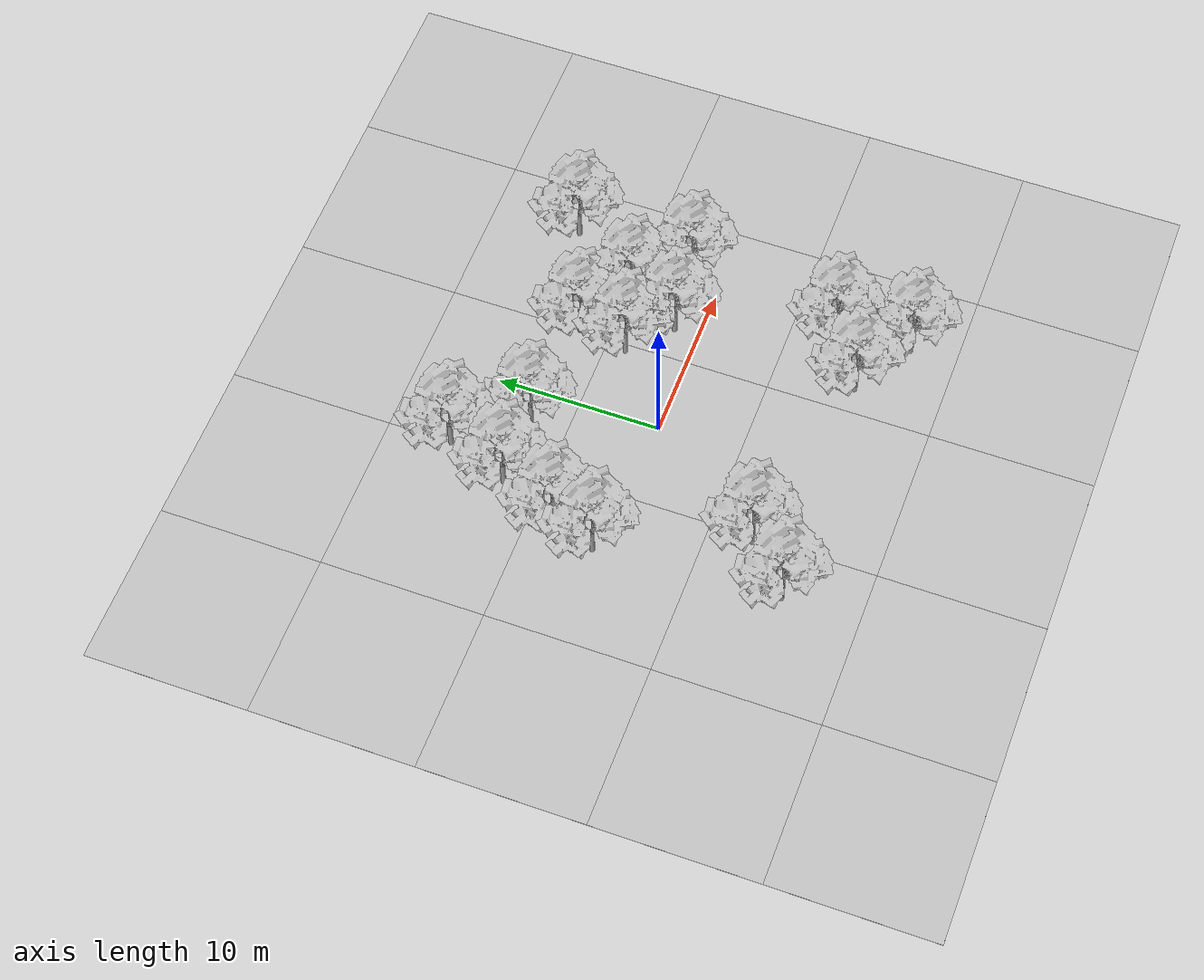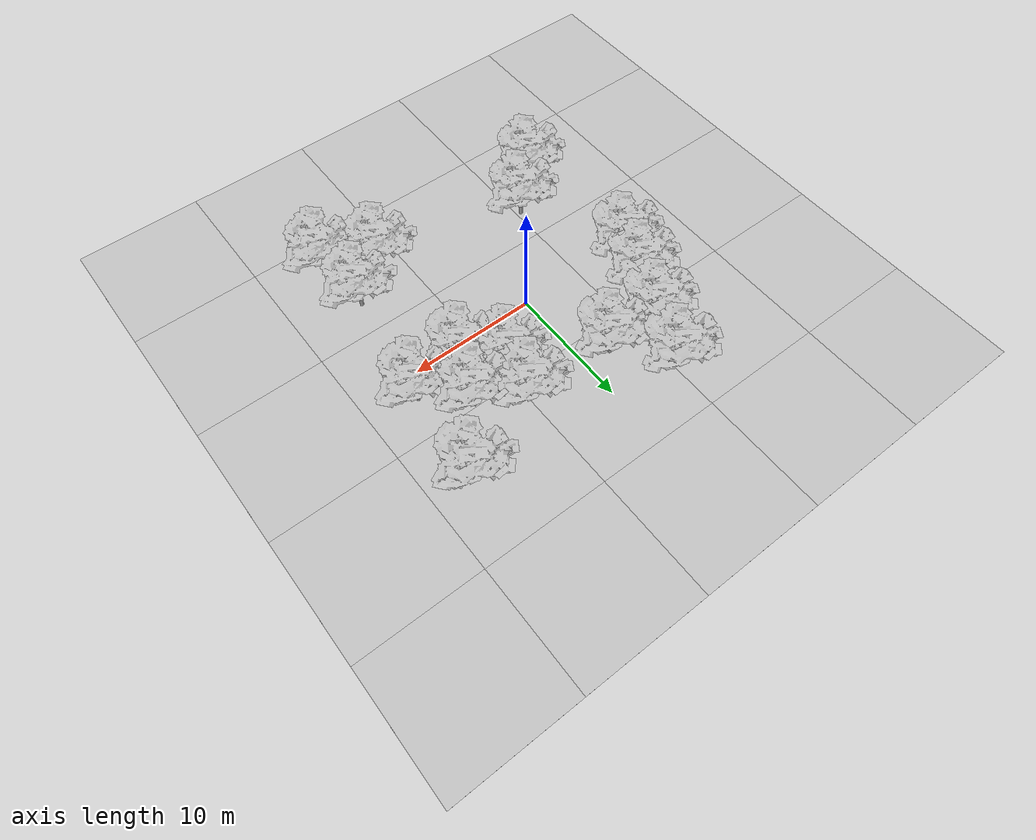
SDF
<sdf version="1.7">
 <world name="world_template_empty">
  <gravity>0 0 -9.8</gravity>
  <scene><ambient>0.4 0.4 0.4 1</ambient><background>0.7 0.7 0.7 1</background><shadows>1</shadows></scene>
  <light name="sun" type="directional">
   <pose>0 0 20 0 -0 0</pose>
   <diffuse>0.8 0.8 0.8 1</diffuse>
   <specular>0.2 0.2 0.2 1</specular>
   <attenuation>
    <range>1000</range>
    <constant>0.9</constant>
    <linear>0.01</linear>
    <quadratic>0.001</quadratic>
   </attenuation>
   <direction>-0.5 0.1 -0.9</direction>
   <spot><inner_angle>0</inner_angle><outer_angle>0</outer_angle><falloff>0</falloff></spot>
  </light>
  <model name="green_ground">
   <static>1</static>
   <link name="link">
    <collision name="collision">
     <geometry><plane><normal>0 0 1</normal><size>200 200</size></plane></geometry>
    </collision>
    <visual name="visual_m20_m20">
     <pose>-20 -20 0 0 -0 0</pose>
     <geometry>
      <mesh><uri>model://world_jean_ground/meshes/world_jean_ground.obj</uri><scale>1 1 1</scale></mesh>
     </geometry>
    </visual>
    <visual name="visual_m20_m10">
     <pose>-20 -10 0 0 -0 0</pose>
     <geometry>
      <mesh><uri>model://world_jean_ground/meshes/world_jean_ground.obj</uri><scale>1 1 1</scale></mesh>
     </geometry>
    </visual>
    <visual name="visual_m20_0">
     <pose>-20 0 0 0 -0 0</pose>
     <geometry>
      <mesh><uri>model://world_jean_ground/meshes/world_jean_ground.obj</uri><scale>1 1 1</scale></mesh>
     </geometry>
    </visual>
    <visual name="visual_m20_10">
     <pose>-20 10 0 0 -0 0</pose>
     <geometry>
      <mesh><uri>model://world_jean_ground/meshes/world_jean_ground.obj</uri><scale>1 1 1</scale></mesh>
     </geometry>
    </visual>
    <visual name="visual_m20_20">
     <pose>-20 20 0 0 -0 0</pose>
     <geometry>
      <mesh><uri>model://world_jean_ground/meshes/world_jean_ground.obj</uri><scale>1 1 1</scale></mesh>
     </geometry>
    </visual>
    <visual name="visual_m10_m20">
     <pose>-10 -20 0 0 -0 0</pose>
     <geometry>
      <mesh><uri>model://world_jean_ground/meshes/world_jean_ground.obj</uri><scale>1 1 1</scale></mesh>
     </geometry>
    </visual>
    <visual name="visual_m10_m10">
     <pose>-10 -10 0 0 -0 0</pose>
     <geometry>
      <mesh><uri>model://world_jean_ground/meshes/world_jean_ground.obj</uri><scale>1 1 1</scale></mesh>
     </geometry>
    </visual>
    <visual name="visual_m10_0">
     <pose>-10 0 0 0 -0 0</pose>
     <geometry>
      <mesh><uri>model://world_jean_ground/meshes/world_jean_ground.obj</uri><scale>1 1 1</scale></mesh>
     </geometry>
    </visual>
    <visual name="visual_m10_10">
     <pose>-10 10 0 0 -0 0</pose>
     <geometry>
      <mesh><uri>model://world_jean_ground/meshes/world_jean_ground.obj</uri><scale>1 1 1</scale></mesh>
     </geometry>
    </visual>
    <visual name="visual_m10_20">
     <pose>-10 20 0 0 -0 0</pose>
     <geometry>
      <mesh><uri>model://world_jean_ground/meshes/world_jean_ground.obj</uri><scale>1 1 1</scale></mesh>
     </geometry>
    </visual>
    <visual name="visual_0_m20">
     <pose>0 -20 0 0 -0 0</pose>
     <geometry>
      <mesh><uri>model://world_jean_ground/meshes/world_jean_ground.obj</uri><scale>1 1 1</scale></mesh>
     </geometry>
    </visual>
    <visual name="visual_0_m10">
     <pose>0 -10 0 0 -0 0</pose>
     <geometry>
      <mesh><uri>model://world_jean_ground/meshes/world_jean_ground.obj</uri><scale>1 1 1</scale></mesh>
     </geometry>
    </visual>
    <visual name="visual_0_0">
     <geometry>
      <mesh><uri>model://world_jean_ground/meshes/world_jean_ground.obj</uri><scale>1 1 1</scale></mesh>
     </geometry>
    </visual>
    <visual name="visual_0_10">
     <pose>0 10 0 0 -0 0</pose>
     <geometry>
      <mesh><uri>model://world_jean_ground/meshes/world_jean_ground.obj</uri><scale>1 1 1</scale></mesh>
     </geometry>
    </visual>
    <visual name="visual_0_20">
     <pose>0 20 0 0 -0 0</pose>
     <geometry>
      <mesh><uri>model://world_jean_ground/meshes/world_jean_ground.obj</uri><scale>1 1 1</scale></mesh>
     </geometry>
    </visual>
    <visual name="visual_10_m20">
     <pose>10 -20 0 0 -0 0</pose>
     <geometry>
      <mesh><uri>model://world_jean_ground/meshes/world_jean_ground.obj</uri><scale>1 1 1</scale></mesh>
     </geometry>
    </visual>
    <visual name="visual_10_m10">
     <pose>10 -10 0 0 -0 0</pose>
     <geometry>
      <mesh><uri>model://world_jean_ground/meshes/world_jean_ground.obj</uri><scale>1 1 1</scale></mesh>
     </geometry>
    </visual>
    <visual name="visual_10_0">
     <pose>10 0 0 0 -0 0</pose>
     <geometry>
      <mesh><uri>model://world_jean_ground/meshes/world_jean_ground.obj</uri><scale>1 1 1</scale></mesh>
     </geometry>
    </visual>
    <visual name="visual_10_10">
     <pose>10 10 0 0 -0 0</pose>
     <geometry>
      <mesh><uri>model://world_jean_ground/meshes/world_jean_ground.obj</uri><scale>1 1 1</scale></mesh>
     </geometry>
    </visual>
    <visual name="visual_10_20">
     <pose>10 20 0 0 -0 0</pose>
     <geometry>
      <mesh><uri>model://world_jean_ground/meshes/world_jean_ground.obj</uri><scale>1 1 1</scale></mesh>
     </geometry>
    </visual>
    <visual name="visual_20_m20">
     <pose>20 -20 0 0 -0 0</pose>
     <geometry>
      <mesh><uri>model://world_jean_ground/meshes/world_jean_ground.obj</uri><scale>1 1 1</scale></mesh>
     </geometry>
    </visual>
    <visual name="visual_20_m10">
     <pose>20 -10 0 0 -0 0</pose>
     <geometry>
      <mesh><uri>model://world_jean_ground/meshes/world_jean_ground.obj</uri><scale>1 1 1</scale></mesh>
     </geometry>
    </visual>
    <visual name="visual_20_0">
     <pose>20 0 0 0 -0 0</pose>
     <geometry>
      <mesh><uri>model://world_jean_ground/meshes/world_jean_ground.obj</uri><scale>1 1 1</scale></mesh>
     </geometry>
    </visual>
    <visual name="visual_20_10">
     <pose>20 10 0 0 -0 0</pose>
     <geometry>
      <mesh><uri>model://world_jean_ground/meshes/world_jean_ground.obj</uri><scale>1 1 1</scale></mesh>
     </geometry>
    </visual>
    <visual name="visual_20_20">
     <pose>20 20 0 0 -0 0</pose>
     <geometry>
      <mesh><uri>model://world_jean_ground/meshes/world_jean_ground.obj</uri><scale>1 1 1</scale></mesh>
     </geometry>
    </visual>
   </link>
  </model>
  <magnetic_field>6e-06 2.3e-05 -4.2e-05</magnetic_field>
  <atmosphere type="adiabatic"/>
  <physics type="ode">
   <max_step_size>0.001</max_step_size>
   <real_time_factor>1</real_time_factor>
   <real_time_update_rate>1000</real_time_update_rate>
  </physics>
  <spherical_coordinates>
   <surface_model>EARTH_WGS84</surface_model>
   <latitude_deg>0</latitude_deg>
   <longitude_deg>0</longitude_deg>
   <elevation>0</elevation>
   <heading_deg>0</heading_deg>
  </spherical_coordinates>
  <model name="world_jean_tree_clone">
   <static>1</static>
   <link name="link">
    <collision name="collision">
     <pose>0 0 1 0 -0 0</pose>
     <geometry><cylinder><radius>0.22</radius><length>2</length></cylinder></geometry>
    </collision>
    <visual name="visual">
     <geometry>
      <mesh><uri>model://world_jean_tree/meshes/world_jean_tree.obj</uri><scale>1 1 1</scale></mesh>
     </geometry>
    </visual>
   </link>
   <pose>4.52183 3.7767 0 0 -0 0</pose>
  </model>
  <model name="world_jean_tree_clone_clone">
   <static>1</static>
   <link name="link">
    <collision name="collision">
     <pose>0 0 1 0 -0 0</pose>
     <geometry><cylinder><radius>0.22</radius><length>2</length></cylinder></geometry>
    </collision>
    <visual name="visual">
     <geometry>
      <mesh><uri>model://world_jean_tree/meshes/world_jean_tree.obj</uri><scale>1 1 1</scale></mesh>
     </geometry>
    </visual>
   </link>
   <pose>6.97302 1.5287 0 0 -0 0</pose>
  </model>
  <model name="world_jean_tree_clone_clone_clone">
   <static>1</static>
   <link name="link">
    <collision name="collision">
     <pose>0 0 1 0 -0 0</pose>
     <geometry><cylinder><radius>0.22</radius><length>2</length></cylinder></geometry>
    </collision>
    <visual name="visual">
     <geometry>
      <mesh><uri>model://world_jean_tree/meshes/world_jean_tree.obj</uri><scale>1 1 1</scale></mesh>
     </geometry>
    </visual>
   </link>
   <pose>8.27403 4.78452 0 0 -0 0</pose>
  </model>
  <model name="world_jean_tree_clone_clone_clone_0">
   <static>1</static>
   <link name="link">
    <collision name="collision">
     <pose>0 0 1 0 -0 0</pose>
     <geometry><cylinder><radius>0.22</radius><length>2</length></cylinder></geometry>
    </collision>
    <visual name="visual">
     <geometry>
      <mesh><uri>model://world_jean_tree/meshes/world_jean_tree.obj</uri><scale>1 1 1</scale></mesh>
     </geometry>
    </visual>
   </link>
   <pose>4.97222 6.81452 0 0 -0 0</pose>
  </model>
  <model name="world_jean_tree_clone_clone_0">
   <static>1</static>
   <link name="link">
    <collision name="collision">
     <pose>0 0 1 0 -0 0</pose>
     <geometry><cylinder><radius>0.22</radius><length>2</length></cylinder></geometry>
    </collision>
    <visual name="visual">
     <geometry>
      <mesh><uri>model://world_jean_tree/meshes/world_jean_tree.obj</uri><scale>1 1 1</scale></mesh>
     </geometry>
    </visual>
   </link>
   <pose>-2.16595 7.16804 0 0 -0 0</pose>
  </model>
  <model name="world_jean_tree_clone_clone_0_clone">
   <static>1</static>
   <link name="link">
    <collision name="collision">
     <pose>0 0 1 0 -0 0</pose>
     <geometry><cylinder><radius>0.22</radius><length>2</length></cylinder></geometry>
    </collision>
    <visual name="visual">
     <geometry>
      <mesh><uri>model://world_jean_tree/meshes/world_jean_tree.obj</uri><scale>1 1 1</scale></mesh>
     </geometry>
    </visual>
   </link>
   <pose>-6.49284 7.17618 0 0 -0 0</pose>
  </model>
  <model name="world_jean_tree_clone_clone_0_clone_0">
   <static>1</static>
   <link name="link">
    <collision name="collision">
     <pose>0 0 1 0 -0 0</pose>
     <geometry><cylinder><radius>0.22</radius><length>2</length></cylinder></geometry>
    </collision>
    <visual name="visual">
     <geometry>
      <mesh><uri>model://world_jean_tree/meshes/world_jean_tree.obj</uri><scale>1 1 1</scale></mesh>
     </geometry>
    </visual>
   </link>
   <pose>-5.0412 11.0572 0 0 -0 0</pose>
  </model>
  <model name="world_jean_tree_clone_clone_0_clone_1">
   <static>1</static>
   <link name="link">
    <collision name="collision">
     <pose>0 0 1 0 -0 0</pose>
     <geometry><cylinder><radius>0.22</radius><length>2</length></cylinder></geometry>
    </collision>
    <visual name="visual">
     <geometry>
      <mesh><uri>model://world_jean_tree/meshes/world_jean_tree.obj</uri><scale>1 1 1</scale></mesh>
     </geometry>
    </visual>
   </link>
   <pose>-8.93846 0.774685 0 0 -0 0</pose>
  </model>
  <model name="world_jean_tree_clone_clone_0_clone_1_clone">
   <static>1</static>
   <link name="link">
    <collision name="collision">
     <pose>0 0 1 0 -0 0</pose>
     <geometry><cylinder><radius>0.22</radius><length>2</length></cylinder></geometry>
    </collision>
    <visual name="visual">
     <geometry>
      <mesh><uri>model://world_jean_tree/meshes/world_jean_tree.obj</uri><scale>1 1 1</scale></mesh>
     </geometry>
    </visual>
   </link>
   <pose>-8.11262 3.54745 0 0 -0 0</pose>
  </model>
  <model name="world_jean_tree_clone_clone_0_clone_1_clone_0">
   <static>1</static>
   <link name="link">
    <collision name="collision">
     <pose>0 0 1 0 -0 0</pose>
     <geometry><cylinder><radius>0.22</radius><length>2</length></cylinder></geometry>
    </collision>
    <visual name="visual">
     <geometry>
      <mesh><uri>model://world_jean_tree/meshes/world_jean_tree.obj</uri><scale>1 1 1</scale></mesh>
     </geometry>
    </visual>
   </link>
   <pose>-5.36106 -7.6143 0 0 -0 0</pose>
  </model>
  <model name="world_jean_tree_clone_clone_0_clone_1_clone_1">
   <static>1</static>
   <link name="link">
    <collision name="collision">
     <pose>0 0 1 0 -0 0</pose>
     <geometry><cylinder><radius>0.22</radius><length>2</length></cylinder></geometry>
    </collision>
    <visual name="visual">
     <geometry>
      <mesh><uri>model://world_jean_tree/meshes/world_jean_tree.obj</uri><scale>1 1 1</scale></mesh>
     </geometry>
    </visual>
   </link>
   <pose>11.2258 1.96661 0 0 -0 0</pose>
  </model>
  <model name="world_jean_tree_clone_clone_0_clone_1_clone_2">
   <static>1</static>
   <link name="link">
    <collision name="collision">
     <pose>0 0 1 0 -0 0</pose>
     <geometry><cylinder><radius>0.22</radius><length>2</length></cylinder></geometry>
    </collision>
    <visual name="visual">
     <geometry>
      <mesh><uri>model://world_jean_tree/meshes/world_jean_tree.obj</uri><scale>1 1 1</scale></mesh>
     </geometry>
    </visual>
   </link>
   <pose>11.7159 9.43725 0 0 -0 0</pose>
  </model>
  <model name="world_jean_tree_clone_clone_0_clone_1_clone_3">
   <static>1</static>
   <link name="link">
    <collision name="collision">
     <pose>0 0 1 0 -0 0</pose>
     <geometry><cylinder><radius>0.22</radius><length>2</length></cylinder></geometry>
    </collision>
    <visual name="visual">
     <geometry>
      <mesh><uri>model://world_jean_tree/meshes/world_jean_tree.obj</uri><scale>1 1 1</scale></mesh>
     </geometry>
    </visual>
   </link>
   <pose>6.57351 -9.91856 0 0 -0 0</pose>
  </model>
  <model name="world_jean_tree_clone_clone_0_clone_1_clone_4">
   <static>1</static>
   <link name="link">
    <collision name="collision">
     <pose>0 0 1 0 -0 0</pose>
     <geometry><cylinder><radius>0.22</radius><length>2</length></cylinder></geometry>
    </collision>
    <visual name="visual">
     <geometry>
      <mesh><uri>model://world_jean_tree/meshes/world_jean_tree.obj</uri><scale>1 1 1</scale></mesh>
     </geometry>
    </visual>
   </link>
   <pose>10.3211 -12.2113 0 0 -0 0</pose>
  </model>
  <model name="world_jean_tree_clone_clone_0_clone_1_clone_5">
   <static>1</static>
   <link name="link">
    <collision name="collision">
     <pose>0 0 1 0 -0 0</pose>
     <geometry><cylinder><radius>0.22</radius><length>2</length></cylinder></geometry>
    </collision>
    <visual name="visual">
     <geometry>
      <mesh><uri>model://world_jean_tree/meshes/world_jean_tree.obj</uri><scale>1 1 1</scale></mesh>
     </geometry>
    </visual>
   </link>
   <pose>9.86034 -7.64407 0 0 -0 0</pose>
  </model>
  <model name="world_jean_tree_clone_clone_0_clone_1_clone_6">
   <static>1</static>
   <link name="link">
    <collision name="collision">
     <pose>0 0 1 0 -0 0</pose>
     <geometry><cylinder><radius>0.22</radius><length>2</length></cylinder></geometry>
    </collision>
    <visual name="visual">
     <geometry>
      <mesh><uri>model://world_jean_tree/meshes/world_jean_tree.obj</uri><scale>1 1 1</scale></mesh>
     </geometry>
    </visual>
   </link>
   <pose>-8.25609 -10.3733 0 0 -0 0</pose>
  </model>
 </world>
</sdf>
